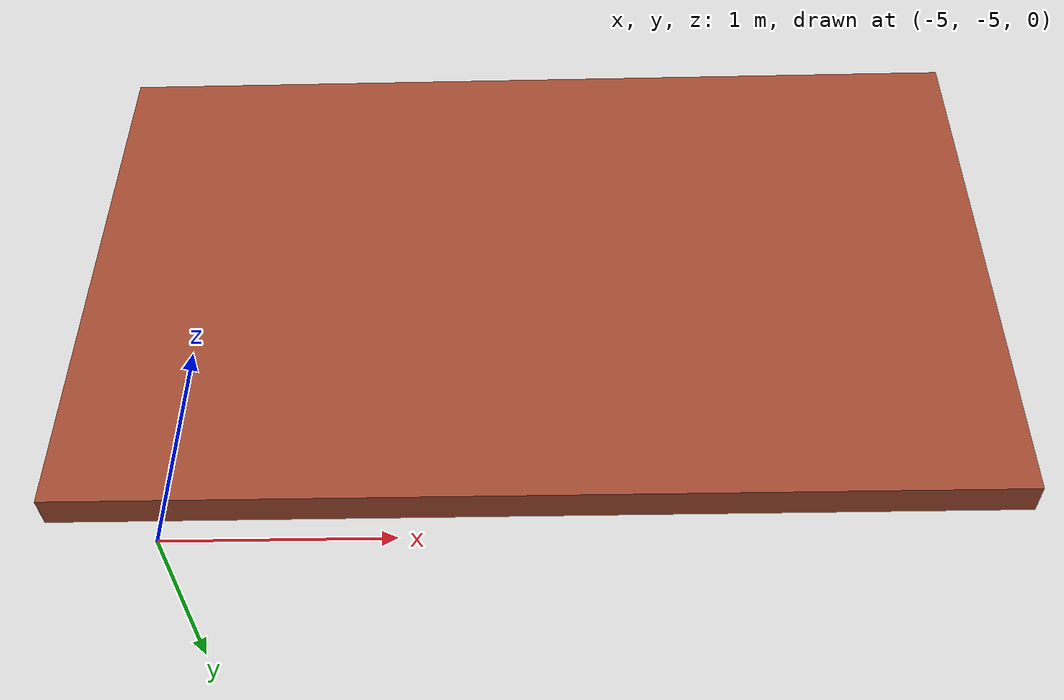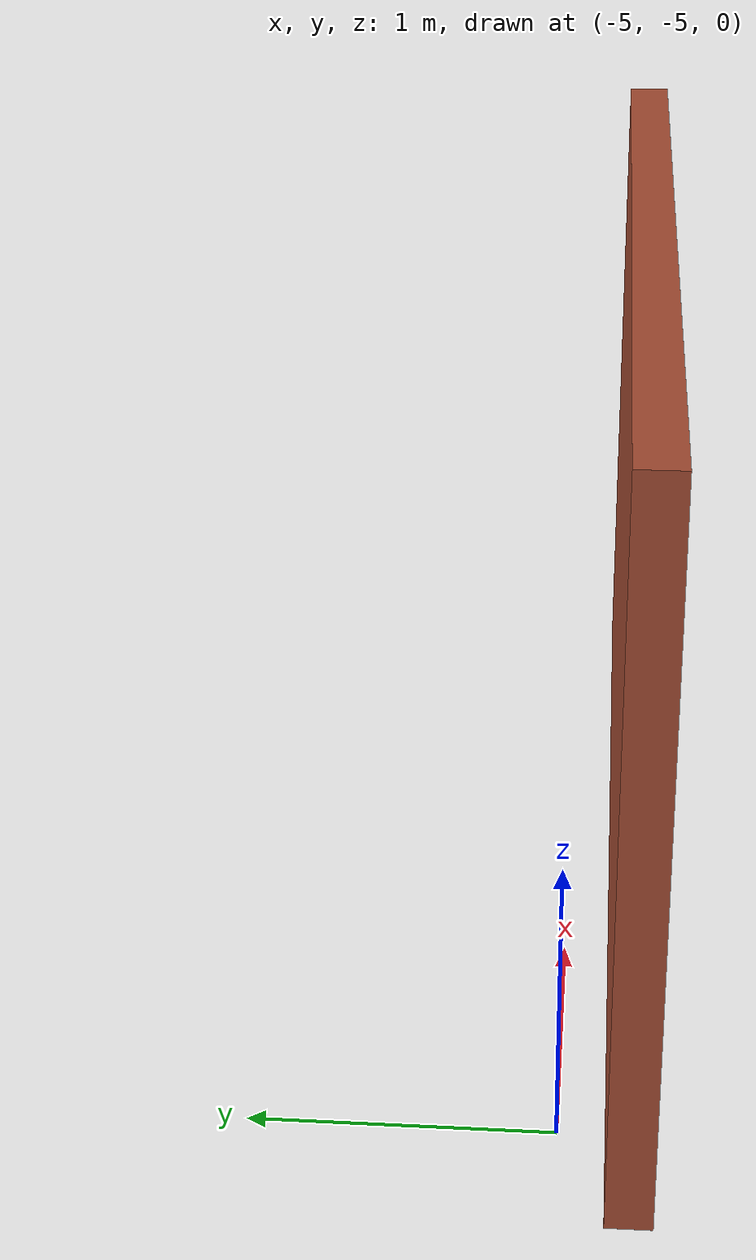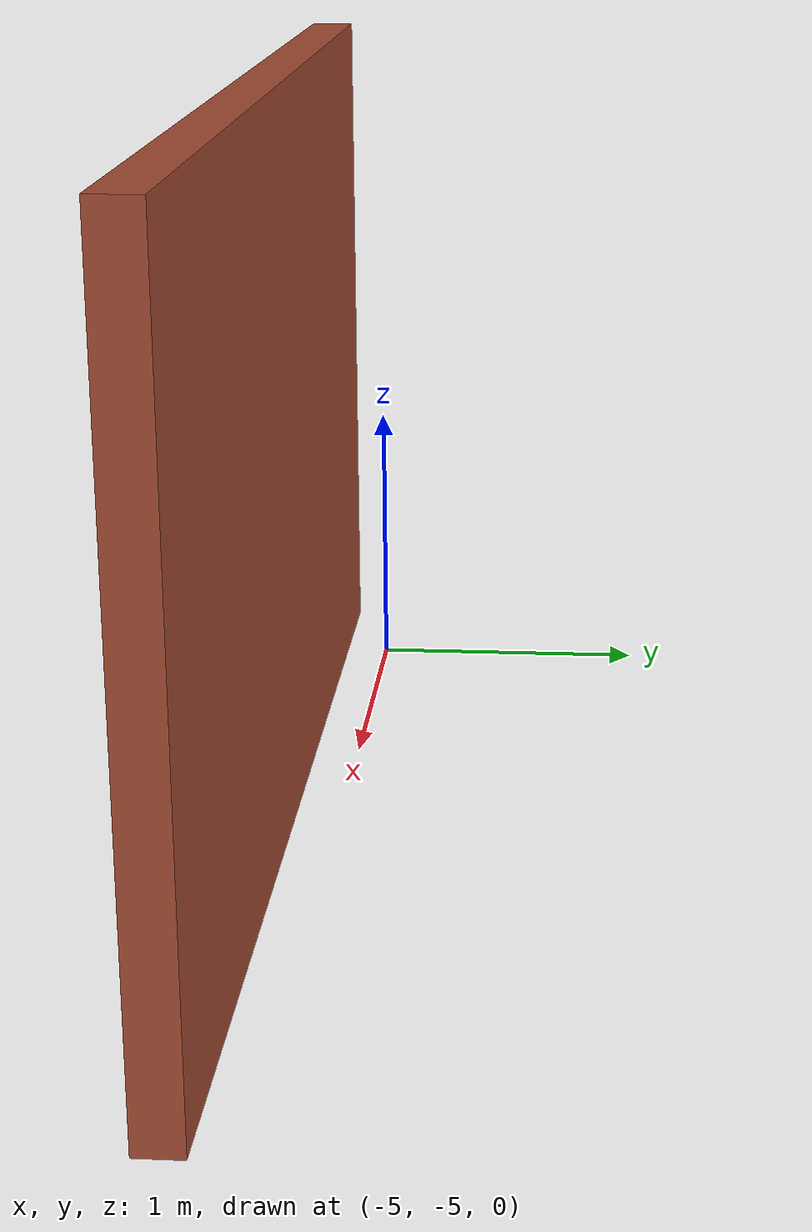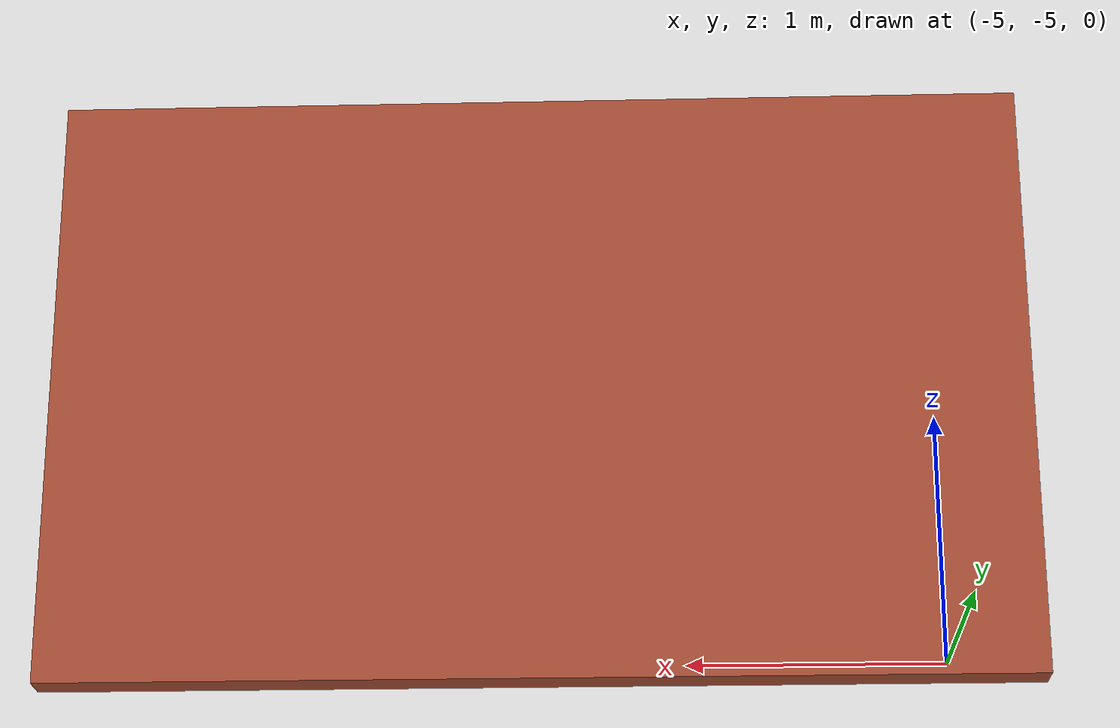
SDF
<?xml version='1.0'?>
<sdf version='1.7'>
  <model name='wall'>
    <pose>-2.7125 -2.6525 0 0 -0 0</pose>
    <link name='Wall_2'>
      <collision name='Wall_2_Collision'>
        <geometry>
          <box>
            <size>4 0.15 2.5</size>
          </box>
        </geometry>
        <pose>0 0 1.25 0 -0 0</pose>
      </collision>
      <visual name='Wall_2_Visual'>
        <pose>0 0 1.25 0 -0 0</pose>
        <geometry>
          <box>
            <size>4 0.15 2.5</size>
          </box>
        </geometry>
        <material>
          <script>
            <uri>file://media/materials/scripts/gazebo.material</uri>
            <name>Gazebo/Bricks</name>
          </script>
          <ambient>1 1 1 1</ambient>
        </material>
        <meta>
          <layer>0</layer>
        </meta>
      </visual>
      <pose>-0.7125 -2.5775 0 0 -0 0</pose>
    </link>
    <static>1</static>
  </model>
</sdf>
